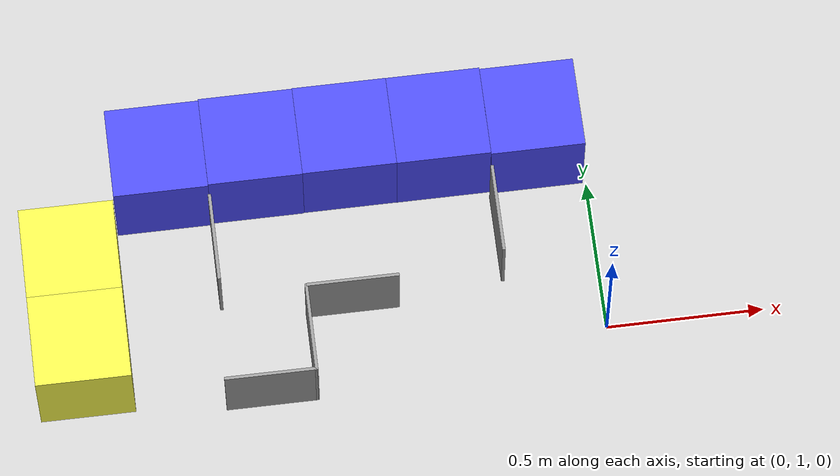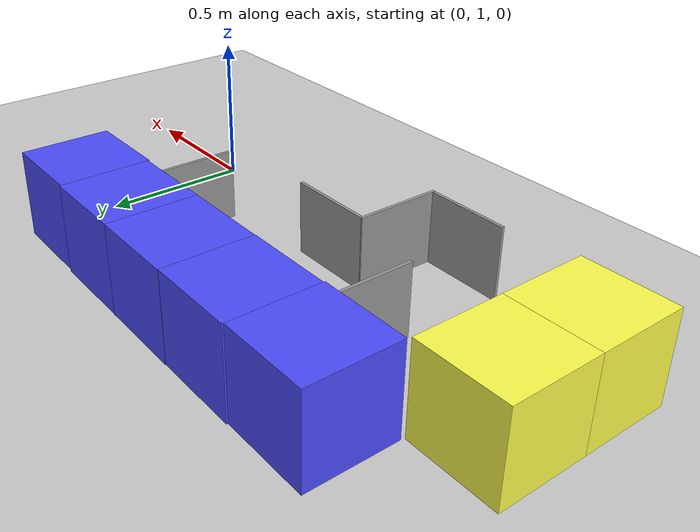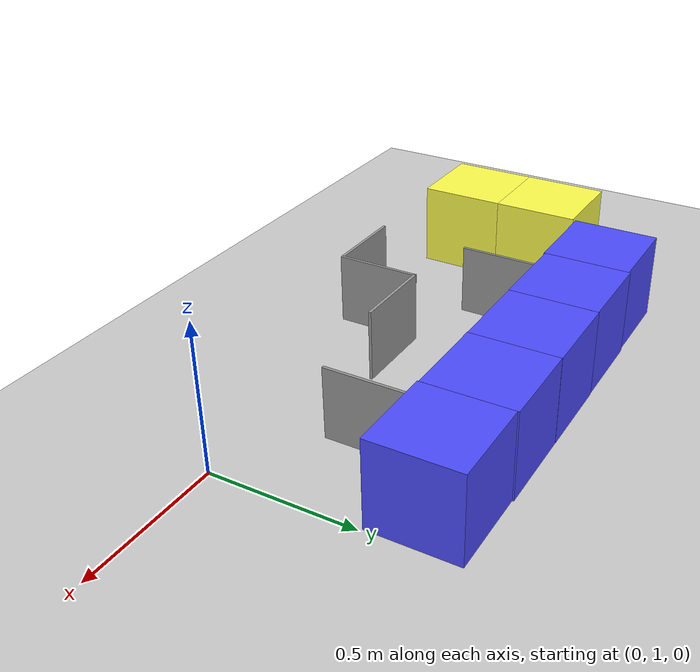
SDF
<sdf version="1.6">
 <world name="default">
  <model name="ground_plane">
   <static>1</static>
   <link name="link">
    <collision name="collision">
     <geometry><plane><normal>0 0 1</normal><size>100 100</size></plane></geometry>
     <surface><friction><ode><mu>100</mu><mu2>50</mu2></ode></friction></surface>
    </collision>
    <visual name="visual">
     <cast_shadows>0</cast_shadows>
     <geometry><plane><normal>0 0 1</normal><size>100 100</size></plane></geometry>
     <material>
      <script><uri>file://media/materials/scripts/gazebo.material</uri><name>Gazebo/Grey</name></script>
     </material>
    </visual>
   </link>
  </model>
  <model name="Box_Yellow_clone_6">
   <link name="link_0">
    <inertial>
     <mass>1</mass>
     <inertia>
      <ixx>0.166667</ixx>
      <ixy>0</ixy>
      <ixz>0</ixz>
      <iyy>0.166667</iyy>
      <iyz>0</iyz>
      <izz>0.166667</izz>
     </inertia>
    </inertial>
    <visual name="visual">
     <geometry><box><size>0.3 0.3 0.3</size></box></geometry>
     <material>
      <lighting>1</lighting>
      <script><uri>file://media/materials/scripts/gazebo.material</uri><name>Gazebo/Grey</name></script>
      <ambient>1 1 0.3 1</ambient>
      <diffuse>0.7 0.7 0.7 1</diffuse>
      <specular>0.01 0.01 0.01 1</specular>
      <emissive>0 0 0 1</emissive>
      <shader type="vertex"><normal_map>__default__</normal_map></shader>
     </material>
    </visual>
    <collision name="collision">
     <geometry><box><size>0.3 0.3 0.3</size></box></geometry>
     <surface>
      <friction>
       <ode><mu>1</mu><mu2>1</mu2><fdir1>0 0 0</fdir1><slip1>0</slip1><slip2>0</slip2></ode>
       <torsional>
        <coefficient>1</coefficient>
        <patch_radius>0</patch_radius>
        <surface_radius>0</surface_radius>
        <use_patch_radius>1</use_patch_radius>
        <ode><slip>0</slip></ode>
       </torsional>
      </friction>
      <bounce><restitution_coefficient>0</restitution_coefficient><threshold>1e+06</threshold></bounce>
      <contact>
       <collide_without_contact>0</collide_without_contact>
       <collide_without_contact_bitmask>1</collide_without_contact_bitmask>
       <collide_bitmask>1</collide_bitmask>
       <ode>
        <soft_cfm>0</soft_cfm>
        <soft_erp>0.2</soft_erp>
        <kp>1e+13</kp>
        <kd>1</kd>
        <max_vel>0.01</max_vel>
        <min_depth>0</min_depth>
       </ode>
       <bullet>
        <split_impulse>1</split_impulse>
        <split_impulse_penetration_threshold>-0.01</split_impulse_penetration_threshold>
        <soft_cfm>0</soft_cfm>
        <soft_erp>0.2</soft_erp>
        <kp>1e+13</kp>
        <kd>1</kd>
       </bullet>
      </contact>
     </surface>
    </collision>
   </link>
   <static>0</static>
   <pose>-1.66268 1.04386 0.15 0 -0 -0.00094</pose>
  </model>
  <model name="Box_Yellow_clone_7">
   <link name="link_0">
    <inertial>
     <mass>1</mass>
     <inertia>
      <ixx>0.166667</ixx>
      <ixy>0</ixy>
      <ixz>0</ixz>
      <iyy>0.166667</iyy>
      <iyz>0</iyz>
      <izz>0.166667</izz>
     </inertia>
    </inertial>
    <visual name="visual">
     <geometry><box><size>0.3 0.3 0.3</size></box></geometry>
     <material>
      <lighting>1</lighting>
      <script><uri>file://media/materials/scripts/gazebo.material</uri><name>Gazebo/Grey</name></script>
      <ambient>1 1 0.3 1</ambient>
      <diffuse>0.7 0.7 0.7 1</diffuse>
      <specular>0.01 0.01 0.01 1</specular>
      <emissive>0 0 0 1</emissive>
      <shader type="vertex"><normal_map>__default__</normal_map></shader>
     </material>
    </visual>
    <collision name="collision">
     <geometry><box><size>0.3 0.3 0.3</size></box></geometry>
     <surface>
      <friction>
       <ode><mu>1</mu><mu2>1</mu2><fdir1>0 0 0</fdir1><slip1>0</slip1><slip2>0</slip2></ode>
       <torsional>
        <coefficient>1</coefficient>
        <patch_radius>0</patch_radius>
        <surface_radius>0</surface_radius>
        <use_patch_radius>1</use_patch_radius>
        <ode><slip>0</slip></ode>
       </torsional>
      </friction>
      <bounce><restitution_coefficient>0</restitution_coefficient><threshold>1e+06</threshold></bounce>
      <contact>
       <collide_without_contact>0</collide_without_contact>
       <collide_without_contact_bitmask>1</collide_without_contact_bitmask>
       <collide_bitmask>1</collide_bitmask>
       <ode>
        <soft_cfm>0</soft_cfm>
        <soft_erp>0.2</soft_erp>
        <kp>1e+13</kp>
        <kd>1</kd>
        <max_vel>0.01</max_vel>
        <min_depth>0</min_depth>
       </ode>
       <bullet>
        <split_impulse>1</split_impulse>
        <split_impulse_penetration_threshold>-0.01</split_impulse_penetration_threshold>
        <soft_cfm>0</soft_cfm>
        <soft_erp>0.2</soft_erp>
        <kp>1e+13</kp>
        <kd>1</kd>
       </bullet>
      </contact>
     </surface>
    </collision>
   </link>
   <static>0</static>
   <pose>-1.66254 1.34386 0.15 0 -0 -0.00094</pose>
  </model>
  <model name="Box_Blue_clone_3">
   <link name="link_0">
    <inertial>
     <mass>1</mass>
     <inertia>
      <ixx>0.166667</ixx>
      <ixy>0</ixy>
      <ixz>0</ixz>
      <iyy>0.166667</iyy>
      <iyz>0</iyz>
      <izz>0.166667</izz>
     </inertia>
    </inertial>
    <visual name="visual">
     <geometry><box><size>0.3 0.3 0.3</size></box></geometry>
     <material>
      <lighting>1</lighting>
      <script><uri>file://media/materials/scripts/gazebo.material</uri><name>Gazebo/Grey</name></script>
      <ambient>0.3 0.3 1 1</ambient>
      <diffuse>0.7 0.7 0.7 1</diffuse>
      <specular>0.01 0.01 0.01 1</specular>
      <emissive>0 0 0 1</emissive>
      <shader type="vertex"><normal_map>__default__</normal_map></shader>
     </material>
    </visual>
    <collision name="collision">
     <geometry><box><size>0.3 0.3 0.3</size></box></geometry>
     <surface>
      <friction>
       <ode><mu>1</mu><mu2>1</mu2><fdir1>0 0 0</fdir1><slip1>0</slip1><slip2>0</slip2></ode>
       <torsional>
        <coefficient>1</coefficient>
        <patch_radius>0</patch_radius>
        <surface_radius>0</surface_radius>
        <use_patch_radius>1</use_patch_radius>
        <ode><slip>0</slip></ode>
       </torsional>
      </friction>
      <bounce><restitution_coefficient>0</restitution_coefficient><threshold>1e+06</threshold></bounce>
      <contact>
       <collide_without_contact>0</collide_without_contact>
       <collide_without_contact_bitmask>1</collide_without_contact_bitmask>
       <collide_bitmask>1</collide_bitmask>
       <ode>
        <soft_cfm>0</soft_cfm>
        <soft_erp>0.2</soft_erp>
        <kp>1e+13</kp>
        <kd>1</kd>
        <max_vel>0.01</max_vel>
        <min_depth>0</min_depth>
       </ode>
       <bullet>
        <split_impulse>1</split_impulse>
        <split_impulse_penetration_threshold>-0.01</split_impulse_penetration_threshold>
        <soft_cfm>0</soft_cfm>
        <soft_erp>0.2</soft_erp>
        <kp>1e+13</kp>
        <kd>1</kd>
       </bullet>
      </contact>
     </surface>
    </collision>
   </link>
   <static>0</static>
   <pose>-0.159695 1.65795 0.15 0 -0 0.001827</pose>
  </model>
  <model name="Box_Blue_clone_4">
   <link name="link_0">
    <inertial>
     <mass>1</mass>
     <inertia>
      <ixx>0.166667</ixx>
      <ixy>0</ixy>
      <ixz>0</ixz>
      <iyy>0.166667</iyy>
      <iyz>0</iyz>
      <izz>0.166667</izz>
     </inertia>
    </inertial>
    <visual name="visual">
     <geometry><box><size>0.3 0.3 0.3</size></box></geometry>
     <material>
      <lighting>1</lighting>
      <script><uri>file://media/materials/scripts/gazebo.material</uri><name>Gazebo/Grey</name></script>
      <ambient>0.3 0.3 1 1</ambient>
      <diffuse>0.7 0.7 0.7 1</diffuse>
      <specular>0.01 0.01 0.01 1</specular>
      <emissive>0 0 0 1</emissive>
      <shader type="vertex"><normal_map>__default__</normal_map></shader>
     </material>
    </visual>
    <collision name="collision">
     <geometry><box><size>0.3 0.3 0.3</size></box></geometry>
     <surface>
      <friction>
       <ode><mu>1</mu><mu2>1</mu2><fdir1>0 0 0</fdir1><slip1>0</slip1><slip2>0</slip2></ode>
       <torsional>
        <coefficient>1</coefficient>
        <patch_radius>0</patch_radius>
        <surface_radius>0</surface_radius>
        <use_patch_radius>1</use_patch_radius>
        <ode><slip>0</slip></ode>
       </torsional>
      </friction>
      <bounce><restitution_coefficient>0</restitution_coefficient><threshold>1e+06</threshold></bounce>
      <contact>
       <collide_without_contact>0</collide_without_contact>
       <collide_without_contact_bitmask>1</collide_without_contact_bitmask>
       <collide_bitmask>1</collide_bitmask>
       <ode>
        <soft_cfm>0</soft_cfm>
        <soft_erp>0.2</soft_erp>
        <kp>1e+13</kp>
        <kd>1</kd>
        <max_vel>0.01</max_vel>
        <min_depth>0</min_depth>
       </ode>
       <bullet>
        <split_impulse>1</split_impulse>
        <split_impulse_penetration_threshold>-0.01</split_impulse_penetration_threshold>
        <soft_cfm>0</soft_cfm>
        <soft_erp>0.2</soft_erp>
        <kp>1e+13</kp>
        <kd>1</kd>
       </bullet>
      </contact>
     </surface>
    </collision>
   </link>
   <static>0</static>
   <pose>-0.459753 1.66237 0.15 0 -0 0.0015</pose>
  </model>
  <model name="Box_Blue_clone_5">
   <link name="link_0">
    <inertial>
     <mass>1</mass>
     <inertia>
      <ixx>0.166667</ixx>
      <ixy>0</ixy>
      <ixz>0</ixz>
      <iyy>0.166667</iyy>
      <iyz>0</iyz>
      <izz>0.166667</izz>
     </inertia>
    </inertial>
    <visual name="visual">
     <geometry><box><size>0.3 0.3 0.3</size></box></geometry>
     <material>
      <lighting>1</lighting>
      <script><uri>file://media/materials/scripts/gazebo.material</uri><name>Gazebo/Grey</name></script>
      <ambient>0.3 0.3 1 1</ambient>
      <diffuse>0.7 0.7 0.7 1</diffuse>
      <specular>0.01 0.01 0.01 1</specular>
      <emissive>0 0 0 1</emissive>
      <shader type="vertex"><normal_map>__default__</normal_map></shader>
     </material>
    </visual>
    <collision name="collision">
     <geometry><box><size>0.3 0.3 0.3</size></box></geometry>
     <surface>
      <friction>
       <ode><mu>1</mu><mu2>1</mu2><fdir1>0 0 0</fdir1><slip1>0</slip1><slip2>0</slip2></ode>
       <torsional>
        <coefficient>1</coefficient>
        <patch_radius>0</patch_radius>
        <surface_radius>0</surface_radius>
        <use_patch_radius>1</use_patch_radius>
        <ode><slip>0</slip></ode>
       </torsional>
      </friction>
      <bounce><restitution_coefficient>0</restitution_coefficient><threshold>1e+06</threshold></bounce>
      <contact>
       <collide_without_contact>0</collide_without_contact>
       <collide_without_contact_bitmask>1</collide_without_contact_bitmask>
       <collide_bitmask>1</collide_bitmask>
       <ode>
        <soft_cfm>0</soft_cfm>
        <soft_erp>0.2</soft_erp>
        <kp>1e+13</kp>
        <kd>1</kd>
        <max_vel>0.01</max_vel>
        <min_depth>0</min_depth>
       </ode>
       <bullet>
        <split_impulse>1</split_impulse>
        <split_impulse_penetration_threshold>-0.01</split_impulse_penetration_threshold>
        <soft_cfm>0</soft_cfm>
        <soft_erp>0.2</soft_erp>
        <kp>1e+13</kp>
        <kd>1</kd>
       </bullet>
      </contact>
     </surface>
    </collision>
   </link>
   <static>0</static>
   <pose>-0.759764 1.66238 0.15 0 -0 0.001446</pose>
  </model>
  <model name="Box_Blue_clone_6">
   <link name="link_0">
    <inertial>
     <mass>1</mass>
     <inertia>
      <ixx>0.166667</ixx>
      <ixy>0</ixy>
      <ixz>0</ixz>
      <iyy>0.166667</iyy>
      <iyz>0</iyz>
      <izz>0.166667</izz>
     </inertia>
    </inertial>
    <visual name="visual">
     <geometry><box><size>0.3 0.3 0.3</size></box></geometry>
     <material>
      <lighting>1</lighting>
      <script><uri>file://media/materials/scripts/gazebo.material</uri><name>Gazebo/Grey</name></script>
      <ambient>0.3 0.3 1 1</ambient>
      <diffuse>0.7 0.7 0.7 1</diffuse>
      <specular>0.01 0.01 0.01 1</specular>
      <emissive>0 0 0 1</emissive>
      <shader type="vertex"><normal_map>__default__</normal_map></shader>
     </material>
    </visual>
    <collision name="collision">
     <geometry><box><size>0.3 0.3 0.3</size></box></geometry>
     <surface>
      <friction>
       <ode><mu>1</mu><mu2>1</mu2><fdir1>0 0 0</fdir1><slip1>0</slip1><slip2>0</slip2></ode>
       <torsional>
        <coefficient>1</coefficient>
        <patch_radius>0</patch_radius>
        <surface_radius>0</surface_radius>
        <use_patch_radius>1</use_patch_radius>
        <ode><slip>0</slip></ode>
       </torsional>
      </friction>
      <bounce><restitution_coefficient>0</restitution_coefficient><threshold>1e+06</threshold></bounce>
      <contact>
       <collide_without_contact>0</collide_without_contact>
       <collide_without_contact_bitmask>1</collide_without_contact_bitmask>
       <collide_bitmask>1</collide_bitmask>
       <ode>
        <soft_cfm>0</soft_cfm>
        <soft_erp>0.2</soft_erp>
        <kp>1e+13</kp>
        <kd>1</kd>
        <max_vel>0.01</max_vel>
        <min_depth>0</min_depth>
       </ode>
       <bullet>
        <split_impulse>1</split_impulse>
        <split_impulse_penetration_threshold>-0.01</split_impulse_penetration_threshold>
        <soft_cfm>0</soft_cfm>
        <soft_erp>0.2</soft_erp>
        <kp>1e+13</kp>
        <kd>1</kd>
       </bullet>
      </contact>
     </surface>
    </collision>
   </link>
   <static>0</static>
   <pose>-1.05978 1.66049 0.15 0 -0 0.001403</pose>
  </model>
  <model name="Box_Blue_clone_7">
   <link name="link_0">
    <inertial>
     <mass>1</mass>
     <inertia>
      <ixx>0.166667</ixx>
      <ixy>0</ixy>
      <ixz>0</ixz>
      <iyy>0.166667</iyy>
      <iyz>0</iyz>
      <izz>0.166667</izz>
     </inertia>
    </inertial>
    <visual name="visual">
     <geometry><box><size>0.3 0.3 0.3</size></box></geometry>
     <material>
      <lighting>1</lighting>
      <script><uri>file://media/materials/scripts/gazebo.material</uri><name>Gazebo/Grey</name></script>
      <ambient>0.3 0.3 1 1</ambient>
      <diffuse>0.7 0.7 0.7 1</diffuse>
      <specular>0.01 0.01 0.01 1</specular>
      <emissive>0 0 0 1</emissive>
      <shader type="vertex"><normal_map>__default__</normal_map></shader>
     </material>
    </visual>
    <collision name="collision">
     <geometry><box><size>0.3 0.3 0.3</size></box></geometry>
     <surface>
      <friction>
       <ode><mu>1</mu><mu2>1</mu2><fdir1>0 0 0</fdir1><slip1>0</slip1><slip2>0</slip2></ode>
       <torsional>
        <coefficient>1</coefficient>
        <patch_radius>0</patch_radius>
        <surface_radius>0</surface_radius>
        <use_patch_radius>1</use_patch_radius>
        <ode><slip>0</slip></ode>
       </torsional>
      </friction>
      <bounce><restitution_coefficient>0</restitution_coefficient><threshold>1e+06</threshold></bounce>
      <contact>
       <collide_without_contact>0</collide_without_contact>
       <collide_without_contact_bitmask>1</collide_without_contact_bitmask>
       <collide_bitmask>1</collide_bitmask>
       <ode>
        <soft_cfm>0</soft_cfm>
        <soft_erp>0.2</soft_erp>
        <kp>1e+13</kp>
        <kd>1</kd>
        <max_vel>0.01</max_vel>
        <min_depth>0</min_depth>
       </ode>
       <bullet>
        <split_impulse>1</split_impulse>
        <split_impulse_penetration_threshold>-0.01</split_impulse_penetration_threshold>
        <soft_cfm>0</soft_cfm>
        <soft_erp>0.2</soft_erp>
        <kp>1e+13</kp>
        <kd>1</kd>
       </bullet>
      </contact>
     </surface>
    </collision>
   </link>
   <static>0</static>
   <pose>-1.3598 1.65522 0.15 0 -0 0.001322</pose>
  </model>
  <model name="Maze_I_H_clone_5">
   <pose>-0.308653 1.3447 0 0 -0 0</pose>
   <link name="Wall_0">
    <collision name="Wall_0_Collision">
     <geometry><box><size>0.294 0.01 0.25</size></box></geometry>
     <pose>0 0 0.125 0 -0 0</pose>
    </collision>
    <visual name="Wall_0_Visual">
     <pose>0 0 0.125 0 -0 0</pose>
     <geometry><box><size>0.294 0.01 0.25</size></box></geometry>
     <material>
      <script><uri>file://media/materials/scripts/gazebo.material</uri><name>Gazebo/Grey</name></script>
      <ambient>1 1 1 1</ambient>
     </material>
     <meta><layer>0</layer></meta>
    </visual>
    <pose>0 0 0 0 -0 1.5708</pose>
   </link>
   <static>1</static>
  </model>
  <model name="Maze_I_H_clone_6">
   <pose>-1.20777 1.35352 0 0 -0 0</pose>
   <link name="Wall_0">
    <collision name="Wall_0_Collision">
     <geometry><box><size>0.294 0.01 0.25</size></box></geometry>
     <pose>0 0 0.125 0 -0 0</pose>
    </collision>
    <visual name="Wall_0_Visual">
     <pose>0 0 0.125 0 -0 0</pose>
     <geometry><box><size>0.294 0.01 0.25</size></box></geometry>
     <material>
      <script><uri>file://media/materials/scripts/gazebo.material</uri><name>Gazebo/Grey</name></script>
      <ambient>1 1 1 1</ambient>
     </material>
     <meta><layer>0</layer></meta>
    </visual>
    <pose>0 0 0 0 -0 1.5708</pose>
   </link>
   <static>1</static>
  </model>
  <model name="Maze_L_RU_clone_2">
   <pose>-1.08127 1.01051 0 0 -0 0</pose>
   <link name="Wall_11">
    <collision name="Wall_11_Collision">
     <geometry><box><size>0.294 0.01 0.25</size></box></geometry>
     <pose>0 0 0.125 0 -0 0</pose>
    </collision>
    <visual name="Wall_11_Visual">
     <pose>0 0 0.125 0 -0 0</pose>
     <geometry><box><size>0.294 0.01 0.25</size></box></geometry>
     <material>
      <script><uri>file://media/materials/scripts/gazebo.material</uri><name>Gazebo/Grey</name></script>
      <ambient>1 1 1 1</ambient>
     </material>
     <meta><layer>0</layer></meta>
    </visual>
    <pose>0 -0.142 0 0 -0 0</pose>
   </link>
   <link name="Wall_12">
    <collision name="Wall_12_Collision">
     <geometry><box><size>0.294 0.01 0.25</size></box></geometry>
     <pose>0 0 0.125 0 -0 0</pose>
    </collision>
    <visual name="Wall_12_Visual">
     <pose>0 0 0.125 0 -0 0</pose>
     <geometry><box><size>0.294 0.01 0.25</size></box></geometry>
     <material>
      <script><uri>file://media/materials/scripts/gazebo.material</uri><name>Gazebo/Grey</name></script>
      <ambient>1 1 1 1</ambient>
     </material>
     <meta><layer>0</layer></meta>
    </visual>
    <pose>0.142 0 0 0 -0 1.5708</pose>
   </link>
   <static>1</static>
  </model>
  <model name="Maze_I_V_clone_2_clone">
   <pose>-0.792356 1.15388 0 0 -0 0</pose>
   <link name="Wall_0">
    <collision name="Wall_0_Collision">
     <geometry><box><size>0.294 0.01 0.25</size></box></geometry>
     <pose>0 0 0.125 0 -0 0</pose>
    </collision>
    <visual name="Wall_0_Visual">
     <pose>0 0 0.125 0 -0 0</pose>
     <geometry><box><size>0.294 0.01 0.25</size></box></geometry>
     <material>
      <script><uri>file://media/materials/scripts/gazebo.material</uri><name>Gazebo/Grey</name></script>
      <ambient>1 1 1 1</ambient>
     </material>
     <meta><layer>0</layer></meta>
    </visual>
   </link>
   <static>1</static>
  </model>
 </world>
</sdf>
